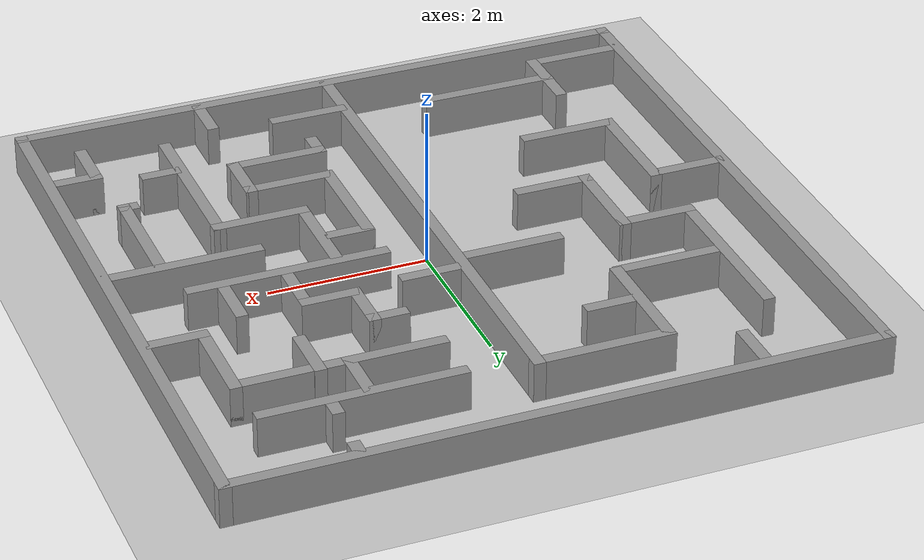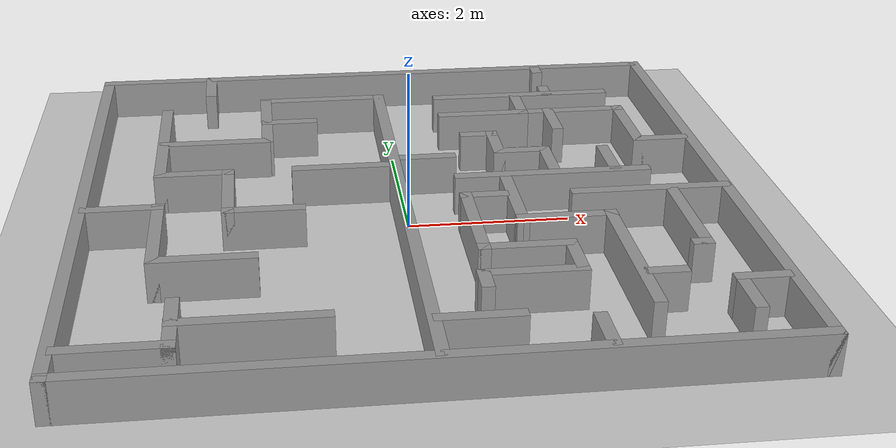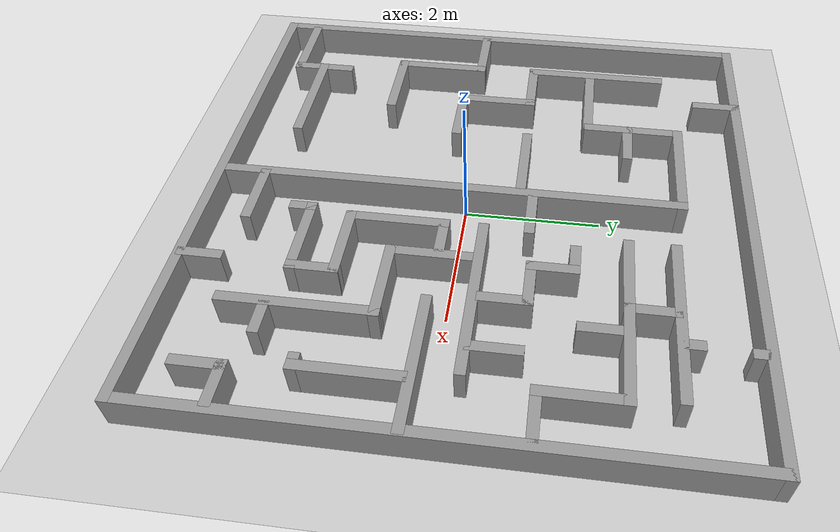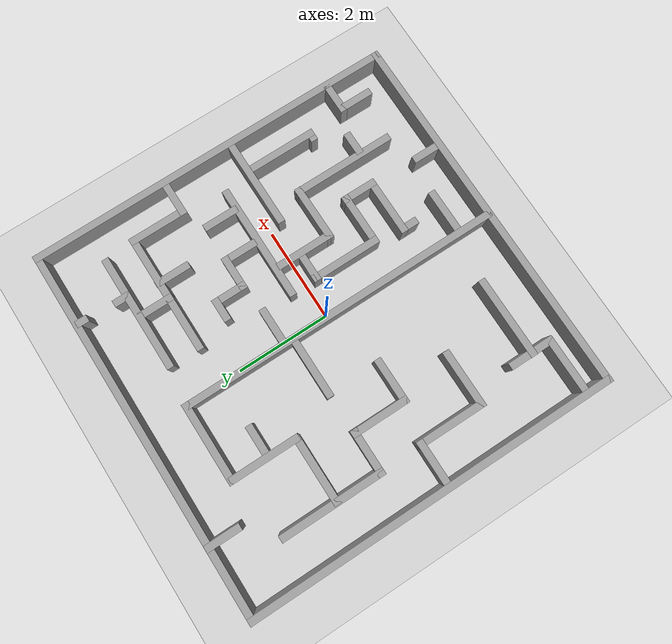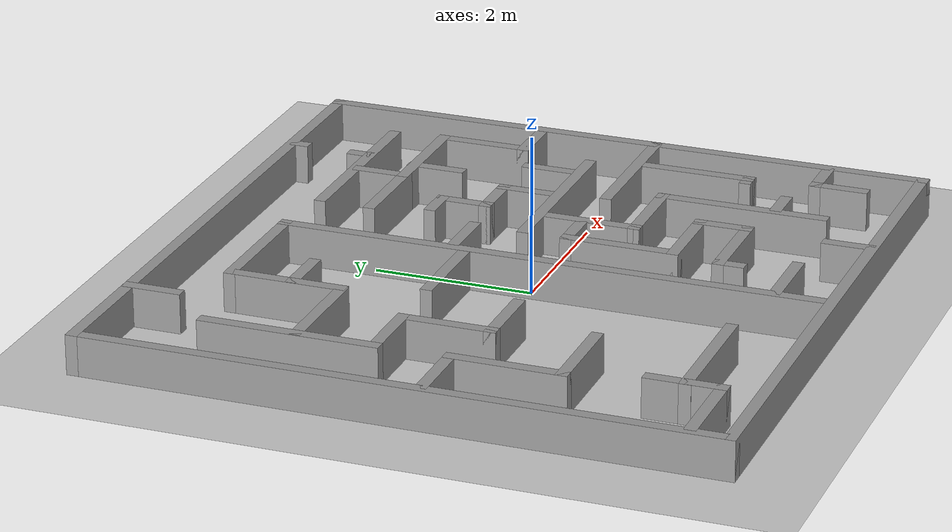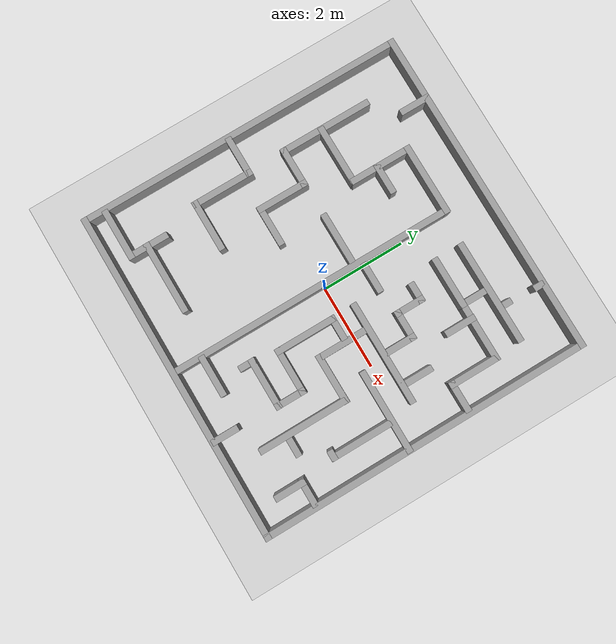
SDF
<sdf version="1.7">
 <world name="default">
  <light name="sun" type="directional">
   <pose>0 0 10 0 -0 0</pose>
   <diffuse>0.8 0.8 0.8 1</diffuse>
   <specular>0.2 0.2 0.2 1</specular>
   <attenuation>
    <range>1000</range>
    <constant>0.9</constant>
    <linear>0.01</linear>
    <quadratic>0.001</quadratic>
   </attenuation>
   <direction>-0.5 0.1 -0.9</direction>
   <spot><inner_angle>0</inner_angle><outer_angle>0</outer_angle><falloff>0</falloff></spot>
  </light>
  <model name="ground_plane">
   <static>1</static>
   <link name="link">
    <collision name="collision">
     <geometry><plane><normal>0 0 1</normal><size>100 100</size></plane></geometry>
     <surface>
      <contact><collide_bitmask>65535</collide_bitmask></contact>
      <friction><ode><mu>100</mu><mu2>50</mu2></ode></friction>
     </surface>
    </collision>
    <visual name="visual">
     <cast_shadows>0</cast_shadows>
     <geometry><plane><normal>0 0 1</normal><size>100 100</size></plane></geometry>
     <material>
      <script><uri>file://media/materials/scripts/gazebo.material</uri><name>Gazebo/Grey</name></script>
     </material>
    </visual>
   </link>
  </model>
  <gravity>0 0 -9.8</gravity>
  <magnetic_field>6e-06 2.3e-05 -4.2e-05</magnetic_field>
  <atmosphere type="adiabatic"/>
  <physics type="ode">
   <max_step_size>0.001</max_step_size>
   <real_time_factor>1</real_time_factor>
   <real_time_update_rate>1000</real_time_update_rate>
  </physics>
  <scene><ambient>0.4 0.4 0.4 1</ambient><background>0.7 0.7 0.7 1</background><shadows>1</shadows></scene>
  <spherical_coordinates>
   <surface_model>EARTH_WGS84</surface_model>
   <latitude_deg>0</latitude_deg>
   <longitude_deg>0</longitude_deg>
   <elevation>0</elevation>
   <heading_deg>0</heading_deg>
  </spherical_coordinates>
  <model name="maze_world_final">
   <pose>-0.014 0.185 0 0 -0 0</pose>
   <link name="Wall_10">
    <collision name="Wall_10_Collision">
     <geometry><box><size>1.25 0.15 0.5</size></box></geometry>
     <pose>0 0 0.25 0 -0 0</pose>
    </collision>
    <visual name="Wall_10_Visual">
     <pose>0 0 0.25 0 -0 0</pose>
     <geometry><box><size>1.25 0.15 0.5</size></box></geometry>
     <material>
      <script><uri>file://media/materials/scripts/gazebo.material</uri><name>Gazebo/Grey</name></script>
      <ambient>1 1 1 1</ambient>
     </material>
     <meta><layer>0</layer></meta>
    </visual>
    <pose>-3.288 -3.449 0 0 -0 0</pose>
   </link>
   <link name="Wall_102">
    <collision name="Wall_102_Collision">
     <geometry><box><size>1.25 0.15 0.5</size></box></geometry>
     <pose>0 0 0.25 0 -0 0</pose>
    </collision>
    <visual name="Wall_102_Visual">
     <pose>0 0 0.25 0 -0 0</pose>
     <geometry><box><size>1.25 0.15 0.5</size></box></geometry>
     <material>
      <script><uri>file://media/materials/scripts/gazebo.material</uri><name>Gazebo/Grey</name></script>
      <ambient>1 1 1 1</ambient>
     </material>
     <meta><layer>0</layer></meta>
    </visual>
    <pose>1.262 -0.508 0 0 -0 -1.5708</pose>
   </link>
   <link name="Wall_104">
    <collision name="Wall_104_Collision">
     <geometry><box><size>0.6 0.15 0.5</size></box></geometry>
     <pose>0 0 0.25 0 -0 0</pose>
    </collision>
    <visual name="Wall_104_Visual">
     <pose>0 0 0.25 0 -0 0</pose>
     <geometry><box><size>0.6 0.15 0.5</size></box></geometry>
     <material>
      <script><uri>file://media/materials/scripts/gazebo.material</uri><name>Gazebo/Grey</name></script>
      <ambient>1 1 1 1</ambient>
     </material>
     <meta><layer>0</layer></meta>
    </visual>
    <pose>0.915 -0.393 0 0 -0 3.14159</pose>
   </link>
   <link name="Wall_106">
    <collision name="Wall_106_Collision">
     <geometry><box><size>1.5 0.15 0.5</size></box></geometry>
     <pose>0 0 0.25 0 -0 0</pose>
    </collision>
    <visual name="Wall_106_Visual">
     <pose>0 0 0.25 0 -0 0</pose>
     <geometry><box><size>1.5 0.15 0.5</size></box></geometry>
     <material>
      <script><uri>file://media/materials/scripts/gazebo.material</uri><name>Gazebo/Grey</name></script>
      <ambient>1 1 1 1</ambient>
     </material>
     <meta><layer>0</layer></meta>
    </visual>
    <pose>0.69 -1.068 0 0 -0 -1.5708</pose>
   </link>
   <link name="Wall_108">
    <collision name="Wall_108_Collision">
     <geometry><box><size>1.15 0.15 0.5</size></box></geometry>
     <pose>0 0 0.25 0 -0 0</pose>
    </collision>
    <visual name="Wall_108_Visual">
     <pose>0 0 0.25 0 -0 0</pose>
     <geometry><box><size>1.15 0.15 0.5</size></box></geometry>
     <material>
      <script><uri>file://media/materials/scripts/gazebo.material</uri><name>Gazebo/Grey</name></script>
      <ambient>1 1 1 1</ambient>
     </material>
     <meta><layer>0</layer></meta>
    </visual>
    <pose>1.19 -1.743 0 0 -0 0</pose>
   </link>
   <link name="Wall_11">
    <collision name="Wall_11_Collision">
     <geometry><box><size>1 0.15 0.5</size></box></geometry>
     <pose>0 0 0.25 0 -0 0</pose>
    </collision>
    <visual name="Wall_11_Visual">
     <pose>0 0 0.25 0 -0 0</pose>
     <geometry><box><size>1 0.15 0.5</size></box></geometry>
     <material>
      <script><uri>file://media/materials/scripts/gazebo.material</uri><name>Gazebo/Grey</name></script>
      <ambient>1 1 1 1</ambient>
     </material>
     <meta><layer>0</layer></meta>
    </visual>
    <pose>-2.738 -3.024 0 0 -0 1.5708</pose>
   </link>
   <link name="Wall_110">
    <collision name="Wall_110_Collision">
     <geometry><box><size>1.21541 0.15 0.5</size></box></geometry>
     <pose>0 0 0.25 0 -0 0</pose>
    </collision>
    <visual name="Wall_110_Visual">
     <pose>0 0 0.25 0 -0 0</pose>
     <geometry><box><size>1.21541 0.15 0.5</size></box></geometry>
     <material>
      <script><uri>file://media/materials/scripts/gazebo.material</uri><name>Gazebo/Grey</name></script>
      <ambient>1 1 1 1</ambient>
     </material>
     <meta><layer>0</layer></meta>
    </visual>
    <pose>1.7947 -1.05553 0 0 -0 0.00464</pose>
   </link>
   <link name="Wall_112">
    <collision name="Wall_112_Collision">
     <geometry><box><size>2.2 0.15 0.5</size></box></geometry>
     <pose>0 0 0.25 0 -0 0</pose>
    </collision>
    <visual name="Wall_112_Visual">
     <pose>0 0 0.25 0 -0 0</pose>
     <geometry><box><size>2.2 0.15 0.5</size></box></geometry>
     <material>
      <script><uri>file://media/materials/scripts/gazebo.material</uri><name>Gazebo/Grey</name></script>
      <ambient>1 1 1 1</ambient>
     </material>
     <meta><layer>0</layer></meta>
    </visual>
    <pose>2.32245 -2.07806 0 0 -0 -1.5708</pose>
   </link>
   <link name="Wall_116">
    <collision name="Wall_116_Collision">
     <geometry><box><size>1.5 0.15 0.5</size></box></geometry>
     <pose>0 0 0.25 0 -0 0</pose>
    </collision>
    <visual name="Wall_116_Visual">
     <pose>0 0 0.25 0 -0 0</pose>
     <geometry><box><size>1.5 0.15 0.5</size></box></geometry>
     <material>
      <script><uri>file://media/materials/scripts/gazebo.material</uri><name>Gazebo/Grey</name></script>
      <ambient>1 1 1 1</ambient>
     </material>
     <meta><layer>0</layer></meta>
    </visual>
    <pose>3.227 -1.207 0 0 -0 -1.5708</pose>
   </link>
   <link name="Wall_117">
    <collision name="Wall_117_Collision">
     <geometry><box><size>0.25 0.15 0.5</size></box></geometry>
     <pose>0 0 0.25 0 -0 0</pose>
    </collision>
    <visual name="Wall_117_Visual">
     <pose>0 0 0.25 0 -0 0</pose>
     <geometry><box><size>0.25 0.15 0.5</size></box></geometry>
     <material>
      <script><uri>file://media/materials/scripts/gazebo.material</uri><name>Gazebo/Grey</name></script>
      <ambient>1 1 1 1</ambient>
     </material>
     <meta><layer>0</layer></meta>
    </visual>
    <pose>3.177 -1.882 0 0 -0 3.14159</pose>
   </link>
   <link name="Wall_120">
    <collision name="Wall_120_Collision">
     <geometry><box><size>0.75 0.15 0.5</size></box></geometry>
     <pose>0 0 0.25 0 -0 0</pose>
    </collision>
    <visual name="Wall_120_Visual">
     <pose>0 0 0.25 0 -0 0</pose>
     <geometry><box><size>0.75 0.15 0.5</size></box></geometry>
     <material>
      <script><uri>file://media/materials/scripts/gazebo.material</uri><name>Gazebo/Grey</name></script>
      <ambient>1 1 1 1</ambient>
     </material>
     <meta><layer>0</layer></meta>
    </visual>
    <pose>1.69 -2.043 0 0 -0 -1.5708</pose>
   </link>
   <link name="Wall_121">
    <collision name="Wall_121_Collision">
     <geometry><box><size>1.25 0.15 0.5</size></box></geometry>
     <pose>0 0 0.25 0 -0 0</pose>
    </collision>
    <visual name="Wall_121_Visual">
     <pose>0 0 0.25 0 -0 0</pose>
     <geometry><box><size>1.25 0.15 0.5</size></box></geometry>
     <material>
      <script><uri>file://media/materials/scripts/gazebo.material</uri><name>Gazebo/Grey</name></script>
      <ambient>1 1 1 1</ambient>
     </material>
     <meta><layer>0</layer></meta>
    </visual>
    <pose>1.14 -2.343 0 0 -0 3.14159</pose>
   </link>
   <link name="Wall_123">
    <collision name="Wall_123_Collision">
     <geometry><box><size>0.4 0.15 0.5</size></box></geometry>
     <pose>0 0 0.25 0 -0 0</pose>
    </collision>
    <visual name="Wall_123_Visual">
     <pose>0 0 0.25 0 -0 0</pose>
     <geometry><box><size>0.4 0.15 0.5</size></box></geometry>
     <material>
      <script><uri>file://media/materials/scripts/gazebo.material</uri><name>Gazebo/Grey</name></script>
      <ambient>1 1 1 1</ambient>
     </material>
     <meta><layer>0</layer></meta>
    </visual>
    <pose>0.59 -2.468 0 0 -0 -1.5708</pose>
   </link>
   <link name="Wall_125">
    <collision name="Wall_125_Collision">
     <geometry><box><size>0.75 0.15 0.5</size></box></geometry>
     <pose>0 0 0.25 0 -0 0</pose>
    </collision>
    <visual name="Wall_125_Visual">
     <pose>0 0 0.25 0 -0 0</pose>
     <geometry><box><size>0.75 0.15 0.5</size></box></geometry>
     <material>
      <script><uri>file://media/materials/scripts/gazebo.material</uri><name>Gazebo/Grey</name></script>
      <ambient>1 1 1 1</ambient>
     </material>
     <meta><layer>0</layer></meta>
    </visual>
    <pose>2.688 0.533 0 0 -0 1.5708</pose>
   </link>
   <link name="Wall_127">
    <collision name="Wall_127_Collision">
     <geometry><box><size>0.75 0.15 0.5</size></box></geometry>
     <pose>0 0 0.25 0 -0 0</pose>
    </collision>
    <visual name="Wall_127_Visual">
     <pose>0 0 0.25 0 -0 0</pose>
     <geometry><box><size>0.75 0.15 0.5</size></box></geometry>
     <material>
      <script><uri>file://media/materials/scripts/gazebo.material</uri><name>Gazebo/Grey</name></script>
      <ambient>1 1 1 1</ambient>
     </material>
     <meta><layer>0</layer></meta>
    </visual>
    <pose>1.916 0.585 0 0 -0 -1.5708</pose>
   </link>
   <link name="Wall_129">
    <collision name="Wall_129_Collision">
     <geometry><box><size>0.65 0.15 0.5</size></box></geometry>
     <pose>0 0 0.25 0 -0 0</pose>
    </collision>
    <visual name="Wall_129_Visual">
     <pose>0 0 0.25 0 -0 0</pose>
     <geometry><box><size>0.65 0.15 0.5</size></box></geometry>
     <material>
      <script><uri>file://media/materials/scripts/gazebo.material</uri><name>Gazebo/Grey</name></script>
      <ambient>1 1 1 1</ambient>
     </material>
     <meta><layer>0</layer></meta>
    </visual>
    <pose>3.585 -2.723 0 0 -0 3.14159</pose>
   </link>
   <link name="Wall_13">
    <collision name="Wall_13_Collision">
     <geometry><box><size>1.75 0.15 0.5</size></box></geometry>
     <pose>0 0 0.25 0 -0 0</pose>
    </collision>
    <visual name="Wall_13_Visual">
     <pose>0 0 0.25 0 -0 0</pose>
     <geometry><box><size>1.75 0.15 0.5</size></box></geometry>
     <material>
      <script><uri>file://media/materials/scripts/gazebo.material</uri><name>Gazebo/Grey</name></script>
      <ambient>1 1 1 1</ambient>
     </material>
     <meta><layer>0</layer></meta>
    </visual>
    <pose>-1.942 -3.032 0 0 -0 0</pose>
   </link>
   <link name="Wall_136">
    <collision name="Wall_136_Collision">
     <geometry><box><size>0.5 0.15 0.5</size></box></geometry>
     <pose>0 0 0.25 0 -0 0</pose>
    </collision>
    <visual name="Wall_136_Visual">
     <pose>0 0 0.25 0 -0 0</pose>
     <geometry><box><size>0.5 0.15 0.5</size></box></geometry>
     <material>
      <script><uri>file://media/materials/scripts/gazebo.material</uri><name>Gazebo/Grey</name></script>
      <ambient>1 1 1 1</ambient>
     </material>
     <meta><layer>0</layer></meta>
    </visual>
    <pose>2.584 -2.497 0 0 -0 0</pose>
   </link>
   <link name="Wall_138">
    <collision name="Wall_138_Collision">
     <geometry><box><size>0.75 0.15 0.5</size></box></geometry>
     <pose>0 0 0.25 0 -0 0</pose>
    </collision>
    <visual name="Wall_138_Visual">
     <pose>0 0 0.25 0 -0 0</pose>
     <geometry><box><size>0.75 0.15 0.5</size></box></geometry>
     <material>
      <script><uri>file://media/materials/scripts/gazebo.material</uri><name>Gazebo/Grey</name></script>
      <ambient>1 1 1 1</ambient>
     </material>
     <meta><layer>0</layer></meta>
    </visual>
    <pose>0.362 0.807 0 0 -0 0</pose>
   </link>
   <link name="Wall_140">
    <collision name="Wall_140_Collision">
     <geometry><box><size>0.35 0.15 0.5</size></box></geometry>
     <pose>0 0 0.25 0 -0 0</pose>
    </collision>
    <visual name="Wall_140_Visual">
     <pose>0 0 0.25 0 -0 0</pose>
     <geometry><box><size>0.35 0.15 0.5</size></box></geometry>
     <material>
      <script><uri>file://media/materials/scripts/gazebo.material</uri><name>Gazebo/Grey</name></script>
      <ambient>1 1 1 1</ambient>
     </material>
     <meta><layer>0</layer></meta>
    </visual>
    <pose>2.34117 2.96063 0 0 -0 1.5708</pose>
   </link>
   <link name="Wall_146">
    <collision name="Wall_146_Collision">
     <geometry><box><size>0.25 0.15 0.5</size></box></geometry>
     <pose>0 0 0.25 0 -0 0</pose>
    </collision>
    <visual name="Wall_146_Visual">
     <pose>0 0 0.25 0 -0 0</pose>
     <geometry><box><size>0.25 0.15 0.5</size></box></geometry>
     <material>
      <script><uri>file://media/materials/scripts/gazebo.material</uri><name>Gazebo/Grey</name></script>
      <ambient>1 1 1 1</ambient>
     </material>
     <meta><layer>0</layer></meta>
    </visual>
    <pose>2.38117 3.81063 0 0 -0 -1.5708</pose>
   </link>
   <link name="Wall_148">
    <collision name="Wall_148_Collision">
     <geometry><box><size>0.65 0.15 0.5</size></box></geometry>
     <pose>0 0 0.25 0 -0 0</pose>
    </collision>
    <visual name="Wall_148_Visual">
     <pose>0 0 0.25 0 -0 0</pose>
     <geometry><box><size>0.65 0.15 0.5</size></box></geometry>
     <material>
      <script><uri>file://media/materials/scripts/gazebo.material</uri><name>Gazebo/Grey</name></script>
      <ambient>1 1 1 1</ambient>
     </material>
     <meta><layer>0</layer></meta>
    </visual>
    <pose>1.641 -3.629 0 0 -0 1.5708</pose>
   </link>
   <link name="Wall_15">
    <collision name="Wall_15_Collision">
     <geometry><box><size>1 0.15 0.5</size></box></geometry>
     <pose>0 0 0.25 0 -0 0</pose>
    </collision>
    <visual name="Wall_15_Visual">
     <pose>0 0 0.25 0 -0 0</pose>
     <geometry><box><size>1 0.15 0.5</size></box></geometry>
     <material>
      <script><uri>file://media/materials/scripts/gazebo.material</uri><name>Gazebo/Grey</name></script>
      <ambient>1 1 1 1</ambient>
     </material>
     <meta><layer>0</layer></meta>
    </visual>
    <pose>-3.43 -0.318 0 0 -0 0</pose>
   </link>
   <link name="Wall_155">
    <collision name="Wall_155_Collision">
     <geometry><box><size>0.75 0.15 0.5</size></box></geometry>
     <pose>0 0 0.25 0 -0 0</pose>
    </collision>
    <visual name="Wall_155_Visual">
     <pose>0 0 0.25 0 -0 0</pose>
     <geometry><box><size>0.75 0.15 0.5</size></box></geometry>
     <material>
      <script><uri>file://media/materials/scripts/gazebo.material</uri><name>Gazebo/Grey</name></script>
      <ambient>1 1 1 1</ambient>
     </material>
     <meta><layer>0</layer></meta>
    </visual>
    <pose>3.335 -3.023 0 0 -0 -1.5708</pose>
   </link>
   <link name="Wall_16">
    <collision name="Wall_16_Collision">
     <geometry><box><size>1.5 0.15 0.5</size></box></geometry>
     <pose>0 0 0.25 0 -0 0</pose>
    </collision>
    <visual name="Wall_16_Visual">
     <pose>0 0 0.25 0 -0 0</pose>
     <geometry><box><size>1.5 0.15 0.5</size></box></geometry>
     <material>
      <script><uri>file://media/materials/scripts/gazebo.material</uri><name>Gazebo/Grey</name></script>
      <ambient>1 1 1 1</ambient>
     </material>
     <meta><layer>0</layer></meta>
    </visual>
    <pose>-3.005 -0.993 0 0 -0 -1.5708</pose>
   </link>
   <link name="Wall_17">
    <collision name="Wall_17_Collision">
     <geometry><box><size>1.25 0.15 0.5</size></box></geometry>
     <pose>0 0 0.25 0 -0 0</pose>
    </collision>
    <visual name="Wall_17_Visual">
     <pose>0 0 0.25 0 -0 0</pose>
     <geometry><box><size>1.25 0.15 0.5</size></box></geometry>
     <material>
      <script><uri>file://media/materials/scripts/gazebo.material</uri><name>Gazebo/Grey</name></script>
      <ambient>1 1 1 1</ambient>
     </material>
     <meta><layer>0</layer></meta>
    </visual>
    <pose>-2.455 -1.668 0 0 -0 0</pose>
   </link>
   <link name="Wall_25">
    <collision name="Wall_25_Collision">
     <geometry><box><size>2.25 0.15 0.5</size></box></geometry>
     <pose>0 0 0.25 0 -0 0</pose>
    </collision>
    <visual name="Wall_25_Visual">
     <pose>0 0 0.25 0 -0 0</pose>
     <geometry><box><size>2.25 0.15 0.5</size></box></geometry>
     <material>
      <script><uri>file://media/materials/scripts/gazebo.material</uri><name>Gazebo/Grey</name></script>
      <ambient>1 1 1 1</ambient>
     </material>
     <meta><layer>0</layer></meta>
    </visual>
    <pose>-3.03 1.646 0 0 -0 -1.5708</pose>
   </link>
   <link name="Wall_29">
    <collision name="Wall_29_Collision">
     <geometry><box><size>1 0.15 0.5</size></box></geometry>
     <pose>0 0 0.25 0 -0 0</pose>
    </collision>
    <visual name="Wall_29_Visual">
     <pose>0 0 0.25 0 -0 0</pose>
     <geometry><box><size>1 0.15 0.5</size></box></geometry>
     <material>
      <script><uri>file://media/materials/scripts/gazebo.material</uri><name>Gazebo/Grey</name></script>
      <ambient>1 1 1 1</ambient>
     </material>
     <meta><layer>0</layer></meta>
    </visual>
    <pose>-2.605 0.596 0 0 -0 0</pose>
   </link>
   <link name="Wall_30">
    <collision name="Wall_30_Collision">
     <geometry><box><size>1.25 0.15 0.5</size></box></geometry>
     <pose>0 0 0.25 0 -0 0</pose>
    </collision>
    <visual name="Wall_30_Visual">
     <pose>0 0 0.25 0 -0 0</pose>
     <geometry><box><size>1.25 0.15 0.5</size></box></geometry>
     <material>
      <script><uri>file://media/materials/scripts/gazebo.material</uri><name>Gazebo/Grey</name></script>
      <ambient>1 1 1 1</ambient>
     </material>
     <meta><layer>0</layer></meta>
    </visual>
    <pose>-2.18 0.046 0 0 -0 -1.5708</pose>
   </link>
   <link name="Wall_37">
    <collision name="Wall_37_Collision">
     <geometry><box><size>7 0.15 0.5</size></box></geometry>
     <pose>0 0 0.25 0 -0 0</pose>
    </collision>
    <visual name="Wall_37_Visual">
     <pose>0 0 0.25 0 -0 0</pose>
     <geometry><box><size>7 0.15 0.5</size></box></geometry>
     <material>
      <script><uri>file://media/materials/scripts/gazebo.material</uri><name>Gazebo/Grey</name></script>
      <ambient>1 1 1 1</ambient>
     </material>
     <meta><layer>0</layer></meta>
    </visual>
    <pose>-0.069 -0.459 0 0 -0 1.5708</pose>
   </link>
   <link name="Wall_40">
    <collision name="Wall_40_Collision">
     <geometry><box><size>1.25 0.15 0.5</size></box></geometry>
     <pose>0 0 0.25 0 -0 0</pose>
    </collision>
    <visual name="Wall_40_Visual">
     <pose>0 0 0.25 0 -0 0</pose>
     <geometry><box><size>1.25 0.15 0.5</size></box></geometry>
     <material>
      <script><uri>file://media/materials/scripts/gazebo.material</uri><name>Gazebo/Grey</name></script>
      <ambient>1 1 1 1</ambient>
     </material>
     <meta><layer>0</layer></meta>
    </visual>
    <pose>-0.759 0.616 0 0 -0 3.14159</pose>
   </link>
   <link name="Wall_44">
    <collision name="Wall_44_Collision">
     <geometry><box><size>1.5 0.15 0.5</size></box></geometry>
     <pose>0 0 0.25 0 -0 0</pose>
    </collision>
    <visual name="Wall_44_Visual">
     <pose>0 0 0.25 0 -0 0</pose>
     <geometry><box><size>1.5 0.15 0.5</size></box></geometry>
     <material>
      <script><uri>file://media/materials/scripts/gazebo.material</uri><name>Gazebo/Grey</name></script>
      <ambient>1 1 1 1</ambient>
     </material>
     <meta><layer>0</layer></meta>
    </visual>
    <pose>-1.669 2.251 0 0 -0 -1.5708</pose>
   </link>
   <link name="Wall_46">
    <collision name="Wall_46_Collision">
     <geometry><box><size>1.75 0.15 0.5</size></box></geometry>
     <pose>0 0 0.25 0 -0 0</pose>
    </collision>
    <visual name="Wall_46_Visual">
     <pose>0 0 0.25 0 -0 0</pose>
     <geometry><box><size>1.75 0.15 0.5</size></box></geometry>
     <material>
      <script><uri>file://media/materials/scripts/gazebo.material</uri><name>Gazebo/Grey</name></script>
      <ambient>1 1 1 1</ambient>
     </material>
     <meta><layer>0</layer></meta>
    </visual>
    <pose>-0.869 2.966 0 0 -0 3.14159</pose>
   </link>
   <link name="Wall_5">
    <collision name="Wall_5_Collision">
     <geometry><box><size>8 0.15 0.5</size></box></geometry>
     <pose>0 0 0.25 0 -0 0</pose>
    </collision>
    <visual name="Wall_5_Visual">
     <pose>0 0 0.25 0 -0 0</pose>
     <geometry><box><size>8 0.15 0.5</size></box></geometry>
     <material>
      <script><uri>file://media/materials/scripts/gazebo.material</uri><name>Gazebo/Grey</name></script>
      <ambient>1 1 1 1</ambient>
     </material>
     <meta><layer>0</layer></meta>
    </visual>
    <pose>-3.925 0 0 0 -0 -1.5708</pose>
   </link>
   <link name="Wall_54">
    <collision name="Wall_54_Collision">
     <geometry><box><size>1 0.15 0.5</size></box></geometry>
     <pose>0 0 0.25 0 -0 0</pose>
    </collision>
    <visual name="Wall_54_Visual">
     <pose>0 0 0.25 0 -0 0</pose>
     <geometry><box><size>1 0.15 0.5</size></box></geometry>
     <material>
      <script><uri>file://media/materials/scripts/gazebo.material</uri><name>Gazebo/Grey</name></script>
      <ambient>1 1 1 1</ambient>
     </material>
     <meta><layer>0</layer></meta>
    </visual>
    <pose>-1.755 -0.504 0 0 -0 0</pose>
   </link>
   <link name="Wall_56">
    <collision name="Wall_56_Collision">
     <geometry><box><size>1.45 0.15 0.5</size></box></geometry>
     <pose>0 0 0.25 0 -0 0</pose>
    </collision>
    <visual name="Wall_56_Visual">
     <pose>0 0 0.25 0 -0 0</pose>
     <geometry><box><size>1.45 0.15 0.5</size></box></geometry>
     <material>
      <script><uri>file://media/materials/scripts/gazebo.material</uri><name>Gazebo/Grey</name></script>
      <ambient>1 1 1 1</ambient>
     </material>
     <meta><layer>0</layer></meta>
    </visual>
    <pose>-2.3595 1.55648 0 0 -0 0</pose>
   </link>
   <link name="Wall_6">
    <collision name="Wall_6_Collision">
     <geometry><box><size>8 0.15 0.5</size></box></geometry>
     <pose>0 0 0.25 0 -0 0</pose>
    </collision>
    <visual name="Wall_6_Visual">
     <pose>0 0 0.25 0 -0 0</pose>
     <geometry><box><size>8 0.15 0.5</size></box></geometry>
     <material>
      <script><uri>file://media/materials/scripts/gazebo.material</uri><name>Gazebo/Grey</name></script>
      <ambient>1 1 1 1</ambient>
     </material>
     <meta><layer>0</layer></meta>
    </visual>
    <pose>-0 -3.925 0 0 -0 0</pose>
   </link>
   <link name="Wall_60">
    <collision name="Wall_60_Collision">
     <geometry><box><size>0.75 0.15 0.5</size></box></geometry>
     <pose>0 0 0.25 0 -0 0</pose>
    </collision>
    <visual name="Wall_60_Visual">
     <pose>0 0 0.25 0 -0 0</pose>
     <geometry><box><size>0.75 0.15 0.5</size></box></geometry>
     <material>
      <script><uri>file://media/materials/scripts/gazebo.material</uri><name>Gazebo/Grey</name></script>
      <ambient>1 1 1 1</ambient>
     </material>
     <meta><layer>0</layer></meta>
    </visual>
    <pose>-2.443 3.623 0 0 -0 -1.5708</pose>
   </link>
   <link name="Wall_67">
    <collision name="Wall_67_Collision">
     <geometry><box><size>0.75 0.15 0.5</size></box></geometry>
     <pose>0 0 0.25 0 -0 0</pose>
    </collision>
    <visual name="Wall_67_Visual">
     <pose>0 0 0.25 0 -0 0</pose>
     <geometry><box><size>0.75 0.15 0.5</size></box></geometry>
     <material>
      <script><uri>file://media/materials/scripts/gazebo.material</uri><name>Gazebo/Grey</name></script>
      <ambient>1 1 1 1</ambient>
     </material>
     <meta><layer>0</layer></meta>
    </visual>
    <pose>-1.36 2.181 0 0 -0 0</pose>
   </link>
   <link name="Wall_7">
    <collision name="Wall_7_Collision">
     <geometry><box><size>8 0.15 0.5</size></box></geometry>
     <pose>0 0 0.25 0 -0 0</pose>
    </collision>
    <visual name="Wall_7_Visual">
     <pose>0 0 0.25 0 -0 0</pose>
     <geometry><box><size>8 0.15 0.5</size></box></geometry>
     <material>
      <script><uri>file://media/materials/scripts/gazebo.material</uri><name>Gazebo/Grey</name></script>
      <ambient>1 1 1 1</ambient>
     </material>
     <meta><layer>0</layer></meta>
    </visual>
    <pose>3.925 0 0 0 -0 1.5708</pose>
   </link>
   <link name="Wall_71">
    <collision name="Wall_71_Collision">
     <geometry><box><size>2.5 0.15 0.5</size></box></geometry>
     <pose>0 0 0.25 0 -0 0</pose>
    </collision>
    <visual name="Wall_71_Visual">
     <pose>0 0 0.25 0 -0 0</pose>
     <geometry><box><size>2.5 0.15 0.5</size></box></geometry>
     <material>
      <script><uri>file://media/materials/scripts/gazebo.material</uri><name>Gazebo/Grey</name></script>
      <ambient>1 1 1 1</ambient>
     </material>
     <meta><layer>0</layer></meta>
    </visual>
    <pose>1.954 2.842 0 0 -0 3.14159</pose>
   </link>
   <link name="Wall_75">
    <collision name="Wall_75_Collision">
     <geometry><box><size>0.75 0.15 0.5</size></box></geometry>
     <pose>0 0 0.25 0 -0 0</pose>
    </collision>
    <visual name="Wall_75_Visual">
     <pose>0 0 0.25 0 -0 0</pose>
     <geometry><box><size>0.75 0.15 0.5</size></box></geometry>
     <material>
      <script><uri>file://media/materials/scripts/gazebo.material</uri><name>Gazebo/Grey</name></script>
      <ambient>1 1 1 1</ambient>
     </material>
     <meta><layer>0</layer></meta>
    </visual>
    <pose>1.87 2.49 0 0 -0 -1.5708</pose>
   </link>
   <link name="Wall_76">
    <collision name="Wall_76_Collision">
     <geometry><box><size>1.5 0.15 0.5</size></box></geometry>
     <pose>0 0 0.25 0 -0 0</pose>
    </collision>
    <visual name="Wall_76_Visual">
     <pose>0 0 0.25 0 -0 0</pose>
     <geometry><box><size>1.5 0.15 0.5</size></box></geometry>
     <material>
      <script><uri>file://media/materials/scripts/gazebo.material</uri><name>Gazebo/Grey</name></script>
      <ambient>1 1 1 1</ambient>
     </material>
     <meta><layer>0</layer></meta>
    </visual>
    <pose>2.545 2.19 0 0 -0 0</pose>
   </link>
   <link name="Wall_78">
    <collision name="Wall_78_Collision">
     <geometry><box><size>1.25 0.15 0.5</size></box></geometry>
     <pose>0 0 0.25 0 -0 0</pose>
    </collision>
    <visual name="Wall_78_Visual">
     <pose>0 0 0.25 0 -0 0</pose>
     <geometry><box><size>1.25 0.15 0.5</size></box></geometry>
     <material>
      <script><uri>file://media/materials/scripts/gazebo.material</uri><name>Gazebo/Grey</name></script>
      <ambient>1 1 1 1</ambient>
     </material>
     <meta><layer>0</layer></meta>
    </visual>
    <pose>3.22 1.64 0 0 -0 -1.5708</pose>
   </link>
   <link name="Wall_79">
    <collision name="Wall_79_Collision">
     <geometry><box><size>0.75 0.15 0.5</size></box></geometry>
     <pose>0 0 0.25 0 -0 0</pose>
    </collision>
    <visual name="Wall_79_Visual">
     <pose>0 0 0.25 0 -0 0</pose>
     <geometry><box><size>0.75 0.15 0.5</size></box></geometry>
     <material>
      <script><uri>file://media/materials/scripts/gazebo.material</uri><name>Gazebo/Grey</name></script>
      <ambient>1 1 1 1</ambient>
     </material>
     <meta><layer>0</layer></meta>
    </visual>
    <pose>3.52 1.09 0 0 -0 0</pose>
   </link>
   <link name="Wall_8">
    <collision name="Wall_8_Collision">
     <geometry><box><size>8 0.15 0.5</size></box></geometry>
     <pose>0 0 0.25 0 -0 0</pose>
    </collision>
    <visual name="Wall_8_Visual">
     <pose>0 0 0.25 0 -0 0</pose>
     <geometry><box><size>8 0.15 0.5</size></box></geometry>
     <material>
      <script><uri>file://media/materials/scripts/gazebo.material</uri><name>Gazebo/Grey</name></script>
      <ambient>1 1 1 1</ambient>
     </material>
     <meta><layer>0</layer></meta>
    </visual>
    <pose>-0 3.925 0 0 -0 3.14159</pose>
   </link>
   <link name="Wall_82">
    <collision name="Wall_82_Collision">
     <geometry><box><size>1.25 0.15 0.5</size></box></geometry>
     <pose>0 0 0.25 0 -0 0</pose>
    </collision>
    <visual name="Wall_82_Visual">
     <pose>0 0 0.25 0 -0 0</pose>
     <geometry><box><size>1.25 0.15 0.5</size></box></geometry>
     <material>
      <script><uri>file://media/materials/scripts/gazebo.material</uri><name>Gazebo/Grey</name></script>
      <ambient>1 1 1 1</ambient>
     </material>
     <meta><layer>0</layer></meta>
    </visual>
    <pose>1.32 2.19 0 0 -0 3.14159</pose>
   </link>
   <link name="Wall_84">
    <collision name="Wall_84_Collision">
     <geometry><box><size>0.5 0.15 0.5</size></box></geometry>
     <pose>0 0 0.25 0 -0 0</pose>
    </collision>
    <visual name="Wall_84_Visual">
     <pose>0 0 0.25 0 -0 0</pose>
     <geometry><box><size>0.5 0.15 0.5</size></box></geometry>
     <material>
      <script><uri>file://media/materials/scripts/gazebo.material</uri><name>Gazebo/Grey</name></script>
      <ambient>1 1 1 1</ambient>
     </material>
     <meta><layer>0</layer></meta>
    </visual>
    <pose>1.141 1.468 0 0 -0 0</pose>
   </link>
   <link name="Wall_85">
    <collision name="Wall_85_Collision">
     <geometry><box><size>0.733 0.15 0.5</size></box></geometry>
     <pose>0 0 0.25 0 -0 0</pose>
    </collision>
    <visual name="Wall_85_Visual">
     <pose>0 0 0.25 0 -0 0</pose>
     <geometry><box><size>0.733 0.15 0.5</size></box></geometry>
     <material>
      <script><uri>file://media/materials/scripts/gazebo.material</uri><name>Gazebo/Grey</name></script>
      <ambient>1 1 1 1</ambient>
     </material>
     <meta><layer>0</layer></meta>
    </visual>
    <pose>1.316 1.1765 0 0 -0 -1.5708</pose>
   </link>
   <link name="Wall_86">
    <collision name="Wall_86_Collision">
     <geometry><box><size>0.75 0.15 0.5</size></box></geometry>
     <pose>0 0 0.25 0 -0 0</pose>
    </collision>
    <visual name="Wall_86_Visual">
     <pose>0 0 0.25 0 -0 0</pose>
     <geometry><box><size>0.75 0.15 0.5</size></box></geometry>
     <material>
      <script><uri>file://media/materials/scripts/gazebo.material</uri><name>Gazebo/Grey</name></script>
      <ambient>1 1 1 1</ambient>
     </material>
     <meta><layer>0</layer></meta>
    </visual>
    <pose>1.616 0.885 0 0 -0 0</pose>
   </link>
   <link name="Wall_89">
    <collision name="Wall_89_Collision">
     <geometry><box><size>0.75 0.15 0.5</size></box></geometry>
     <pose>0 0 0.25 0 -0 0</pose>
    </collision>
    <visual name="Wall_89_Visual">
     <pose>0 0 0.25 0 -0 0</pose>
     <geometry><box><size>0.75 0.15 0.5</size></box></geometry>
     <material>
      <script><uri>file://media/materials/scripts/gazebo.material</uri><name>Gazebo/Grey</name></script>
      <ambient>1 1 1 1</ambient>
     </material>
     <meta><layer>0</layer></meta>
    </visual>
    <pose>2.235 1.899 0 0 -0 -1.5708</pose>
   </link>
   <link name="Wall_94">
    <collision name="Wall_94_Collision">
     <geometry><box><size>2.5 0.15 0.5</size></box></geometry>
     <pose>0 0 0.25 0 -0 0</pose>
    </collision>
    <visual name="Wall_94_Visual">
     <pose>0 0 0.25 0 -0 0</pose>
     <geometry><box><size>2.5 0.15 0.5</size></box></geometry>
     <material>
      <script><uri>file://media/materials/scripts/gazebo.material</uri><name>Gazebo/Grey</name></script>
      <ambient>1 1 1 1</ambient>
     </material>
     <meta><layer>0</layer></meta>
    </visual>
    <pose>1.878 0.164 0 0 -0 3.14159</pose>
   </link>
   <link name="Wall_96">
    <collision name="Wall_96_Collision">
     <geometry><box><size>1 0.15 0.5</size></box></geometry>
     <pose>0 0 0.25 0 -0 0</pose>
    </collision>
    <visual name="Wall_96_Visual">
     <pose>0 0 0.25 0 -0 0</pose>
     <geometry><box><size>1 0.15 0.5</size></box></geometry>
     <material>
      <script><uri>file://media/materials/scripts/gazebo.material</uri><name>Gazebo/Grey</name></script>
      <ambient>1 1 1 1</ambient>
     </material>
     <meta><layer>0</layer></meta>
    </visual>
    <pose>0.417 -3.227 0 0 -0 0</pose>
   </link>
   <link name="Wall_98">
    <collision name="Wall_98_Collision">
     <geometry><box><size>2 0.15 0.5</size></box></geometry>
     <pose>0 0 0.25 0 -0 0</pose>
    </collision>
    <visual name="Wall_98_Visual">
     <pose>0 0 0.25 0 -0 0</pose>
     <geometry><box><size>2 0.15 0.5</size></box></geometry>
     <material>
      <script><uri>file://media/materials/scripts/gazebo.material</uri><name>Gazebo/Grey</name></script>
      <ambient>1 1 1 1</ambient>
     </material>
     <meta><layer>0</layer></meta>
    </visual>
    <pose>2.98 -0.427043 0 0 -0 3.14159</pose>
   </link>
   <static>1</static>
  </model>
 </world>
</sdf>
